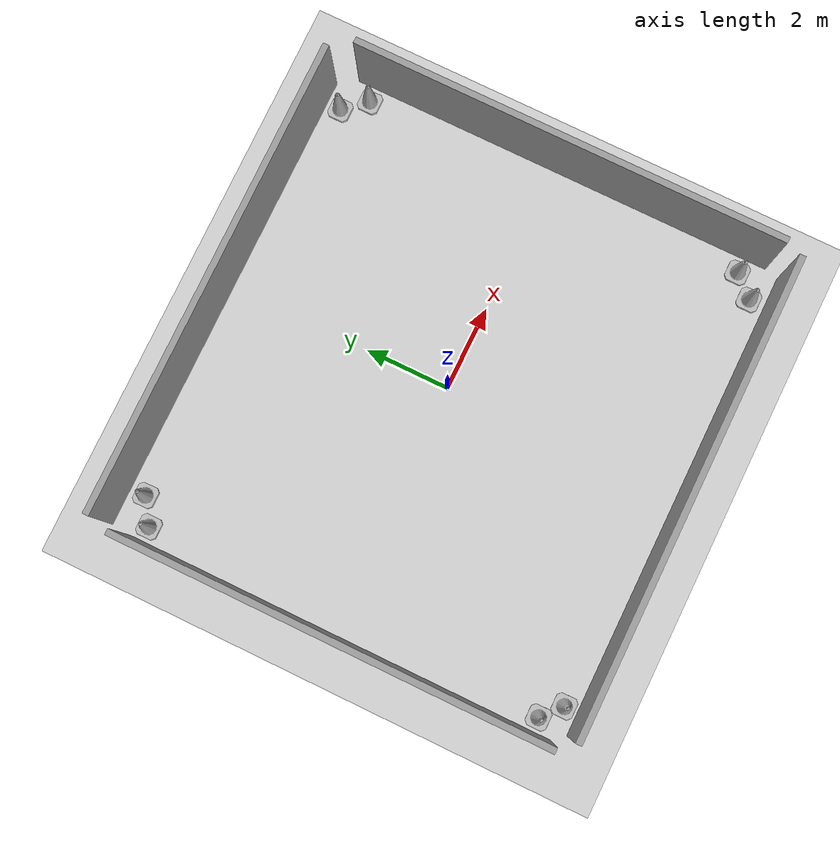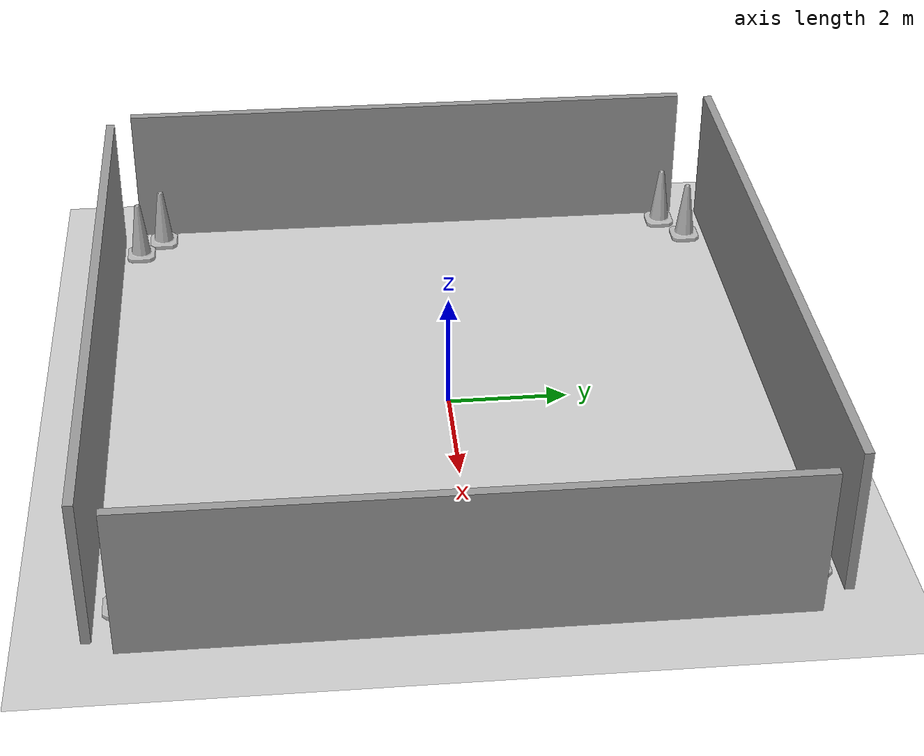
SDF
<sdf version="1.7">
 <world name="default">
  <light name="sun" type="directional">
   <pose>0 0 10 0 -0 0</pose>
   <diffuse>0.8 0.8 0.8 1</diffuse>
   <specular>0.2 0.2 0.2 1</specular>
   <attenuation>
    <range>1000</range>
    <constant>0.9</constant>
    <linear>0.01</linear>
    <quadratic>0.001</quadratic>
   </attenuation>
   <direction>-0.5 0.1 -0.9</direction>
   <spot><inner_angle>0</inner_angle><outer_angle>0</outer_angle><falloff>0</falloff></spot>
  </light>
  <model name="ground_plane">
   <static>1</static>
   <link name="link">
    <collision name="collision">
     <geometry><plane><normal>0 0 1</normal><size>100 100</size></plane></geometry>
     <surface><friction><ode><mu>100</mu><mu2>50</mu2></ode></friction></surface>
    </collision>
    <visual name="visual">
     <cast_shadows>0</cast_shadows>
     <geometry><plane><normal>0 0 1</normal><size>100 100</size></plane></geometry>
     <material>
      <script><uri>file://media/materials/scripts/gazebo.material</uri><name>Gazebo/Grey</name></script>
     </material>
    </visual>
   </link>
  </model>
  <gravity>0 0 -9.8</gravity>
  <magnetic_field>6e-06 2.3e-05 -4.2e-05</magnetic_field>
  <atmosphere type="adiabatic"/>
  <physics type="ode">
   <max_step_size>0.001</max_step_size>
   <real_time_factor>1</real_time_factor>
   <real_time_update_rate>1000</real_time_update_rate>
  </physics>
  <scene><ambient>0.4 0.4 0.4 1</ambient><background>0.7 0.7 0.7 1</background><shadows>1</shadows></scene>
  <audio><device>default</device></audio>
  <spherical_coordinates>
   <surface_model>EARTH_WGS84</surface_model>
   <latitude_deg>0</latitude_deg>
   <longitude_deg>0</longitude_deg>
   <elevation>0</elevation>
   <heading_deg>0</heading_deg>
  </spherical_coordinates>
  <model name="walls">
   <pose>-0.206791 -0.12632 0 0 -0 0</pose>
   <link name="Wall_1">
    <collision name="Wall_1_Collision">
     <geometry><box><size>11.25 0.15 2.5</size></box></geometry>
     <pose>0 0 1.25 0 -0 0</pose>
    </collision>
    <visual name="Wall_1_Visual">
     <pose>0 0 1.25 0 -0 0</pose>
     <geometry><box><size>11.25 0.15 2.5</size></box></geometry>
     <material>
      <script><uri>file://media/materials/scripts/gazebo.material</uri><name>Gazebo/Grey</name></script>
      <ambient>1 1 1 1</ambient>
     </material>
     <meta><layer>0</layer></meta>
    </visual>
    <pose>0.071921 -5.578 0 0 -0 0</pose>
   </link>
   <link name="Wall_3">
    <collision name="Wall_3_Collision">
     <geometry><box><size>11.25 0.15 2.5</size></box></geometry>
     <pose>0 0 1.25 0 -0 0</pose>
    </collision>
    <visual name="Wall_3_Visual">
     <pose>0 0 1.25 0 -0 0</pose>
     <geometry><box><size>11.25 0.15 2.5</size></box></geometry>
     <material>
      <script><uri>file://media/materials/scripts/gazebo.material</uri><name>Gazebo/Grey</name></script>
      <ambient>1 1 1 1</ambient>
     </material>
     <meta><layer>0</layer></meta>
    </visual>
    <pose>-0.118165 5.578 0 0 -0 3.14159</pose>
   </link>
   <link name="Wall_5">
    <collision name="Wall_5_Collision">
     <geometry><box><size>10.25 0.15 2.5</size></box></geometry>
     <pose>0 0 1.25 0 -0 0</pose>
    </collision>
    <visual name="Wall_5_Visual">
     <pose>0 0 1.25 0 -0 0</pose>
     <geometry><box><size>10.25 0.15 2.5</size></box></geometry>
     <material>
      <script><uri>file://media/materials/scripts/gazebo.material</uri><name>Gazebo/Grey</name></script>
      <ambient>1 1 1 1</ambient>
     </material>
     <meta><layer>0</layer></meta>
    </visual>
    <pose>5.86201 -0.051871 0 0 -0 -1.5708</pose>
   </link>
   <link name="Wall_7">
    <collision name="Wall_7_Collision">
     <geometry><box><size>10.25 0.15 2.5</size></box></geometry>
     <pose>0 0 1.25 0 -0 0</pose>
    </collision>
    <visual name="Wall_7_Visual">
     <pose>0 0 1.25 0 -0 0</pose>
     <geometry><box><size>10.25 0.15 2.5</size></box></geometry>
     <material>
      <script><uri>file://media/materials/scripts/gazebo.material</uri><name>Gazebo/Grey</name></script>
      <ambient>1 1 1 1</ambient>
     </material>
     <meta><layer>0</layer></meta>
    </visual>
    <pose>-5.86201 -0.098395 0 0 -0 -1.5708</pose>
   </link>
   <static>1</static>
  </model>
  <model name="Construction Cone">
   <link name="link">
    <collision name="collision">
     <geometry>
      <mesh><scale>10 10 10</scale><uri>model://construction_cone/meshes/construction_cone.dae</uri></mesh>
     </geometry>
    </collision>
    <visual name="visual">
     <geometry>
      <mesh><scale>10 10 10</scale><uri>model://construction_cone/meshes/construction_cone.dae</uri></mesh>
     </geometry>
    </visual>
    <inertial>
     <inertia><ixx>1</ixx><ixy>0</ixy><ixz>0</ixz><iyy>1</iyy><iyz>0</iyz><izz>1</izz></inertia>
     <mass>1</mass>
    </inertial>
   </link>
   <pose>-5.65145 4.62076 -0 0 -0 0</pose>
  </model>
  <model name="Construction Cone_clone">
   <link name="link">
    <collision name="collision">
     <geometry>
      <mesh><scale>10 10 10</scale><uri>model://construction_cone/meshes/construction_cone.dae</uri></mesh>
     </geometry>
    </collision>
    <visual name="visual">
     <geometry>
      <mesh><scale>10 10 10</scale><uri>model://construction_cone/meshes/construction_cone.dae</uri></mesh>
     </geometry>
    </visual>
    <inertial>
     <inertia><ixx>1</ixx><ixy>0</ixy><ixz>0</ixz><iyy>1</iyy><iyz>0</iyz><izz>1</izz></inertia>
     <mass>1</mass>
    </inertial>
   </link>
   <pose>-5.0627 5.00343 -1e-05 0 -0 0</pose>
  </model>
  <model name="Construction Cone_clone_0">
   <link name="link">
    <collision name="collision">
     <geometry>
      <mesh><scale>10 10 10</scale><uri>model://construction_cone/meshes/construction_cone.dae</uri></mesh>
     </geometry>
    </collision>
    <visual name="visual">
     <geometry>
      <mesh><scale>10 10 10</scale><uri>model://construction_cone/meshes/construction_cone.dae</uri></mesh>
     </geometry>
    </visual>
    <inertial>
     <inertia><ixx>1</ixx><ixy>0</ixy><ixz>0</ixz><iyy>1</iyy><iyz>0</iyz><izz>1</izz></inertia>
     <mass>1</mass>
    </inertial>
   </link>
   <pose>4.77451 5.03026 -0 0 -0 0</pose>
  </model>
  <model name="Construction Cone_clone_1">
   <link name="link">
    <collision name="collision">
     <geometry>
      <mesh><scale>10 10 10</scale><uri>model://construction_cone/meshes/construction_cone.dae</uri></mesh>
     </geometry>
    </collision>
    <visual name="visual">
     <geometry>
      <mesh><scale>10 10 10</scale><uri>model://construction_cone/meshes/construction_cone.dae</uri></mesh>
     </geometry>
    </visual>
    <inertial>
     <inertia><ixx>1</ixx><ixy>0</ixy><ixz>0</ixz><iyy>1</iyy><iyz>0</iyz><izz>1</izz></inertia>
     <mass>1</mass>
    </inertial>
   </link>
   <pose>5.22907 4.496 -0 0 -1e-06 0</pose>
  </model>
  <model name="Construction Cone_clone_2">
   <link name="link">
    <collision name="collision">
     <geometry>
      <mesh><scale>10 10 10</scale><uri>model://construction_cone/meshes/construction_cone.dae</uri></mesh>
     </geometry>
    </collision>
    <visual name="visual">
     <geometry>
      <mesh><scale>10 10 10</scale><uri>model://construction_cone/meshes/construction_cone.dae</uri></mesh>
     </geometry>
    </visual>
    <inertial>
     <inertia><ixx>1</ixx><ixy>0</ixy><ixz>0</ixz><iyy>1</iyy><iyz>0</iyz><izz>1</izz></inertia>
     <mass>1</mass>
    </inertial>
   </link>
   <pose>5.22875 -4.76549 -0 0 -0 0</pose>
  </model>
  <model name="Construction Cone_clone_3">
   <link name="link">
    <collision name="collision">
     <geometry>
      <mesh><scale>10 10 10</scale><uri>model://construction_cone/meshes/construction_cone.dae</uri></mesh>
     </geometry>
    </collision>
    <visual name="visual">
     <geometry>
      <mesh><scale>10 10 10</scale><uri>model://construction_cone/meshes/construction_cone.dae</uri></mesh>
     </geometry>
    </visual>
    <inertial>
     <inertia><ixx>1</ixx><ixy>0</ixy><ixz>0</ixz><iyy>1</iyy><iyz>0</iyz><izz>1</izz></inertia>
     <mass>1</mass>
    </inertial>
   </link>
   <pose>4.76936 -5.2534 -0 0 -0 0</pose>
  </model>
  <model name="Construction Cone_clone_4">
   <link name="link">
    <collision name="collision">
     <geometry>
      <mesh><scale>10 10 10</scale><uri>model://construction_cone/meshes/construction_cone.dae</uri></mesh>
     </geometry>
    </collision>
    <visual name="visual">
     <geometry>
      <mesh><scale>10 10 10</scale><uri>model://construction_cone/meshes/construction_cone.dae</uri></mesh>
     </geometry>
    </visual>
    <inertial>
     <inertia><ixx>1</ixx><ixy>0</ixy><ixz>0</ixz><iyy>1</iyy><iyz>0</iyz><izz>1</izz></inertia>
     <mass>1</mass>
    </inertial>
   </link>
   <pose>-5.66777 -4.91028 -1e-05 0 -0 0</pose>
  </model>
  <model name="Construction Cone_clone_5">
   <link name="link">
    <collision name="collision">
     <geometry>
      <mesh><scale>10 10 10</scale><uri>model://construction_cone/meshes/construction_cone.dae</uri></mesh>
     </geometry>
    </collision>
    <visual name="visual">
     <geometry>
      <mesh><scale>10 10 10</scale><uri>model://construction_cone/meshes/construction_cone.dae</uri></mesh>
     </geometry>
    </visual>
    <inertial>
     <inertia><ixx>1</ixx><ixy>0</ixy><ixz>0</ixz><iyy>1</iyy><iyz>0</iyz><izz>1</izz></inertia>
     <mass>1</mass>
    </inertial>
   </link>
   <pose>-5.2112 -5.31658 -0 0 -0 0</pose>
  </model>
 </world>
</sdf>
